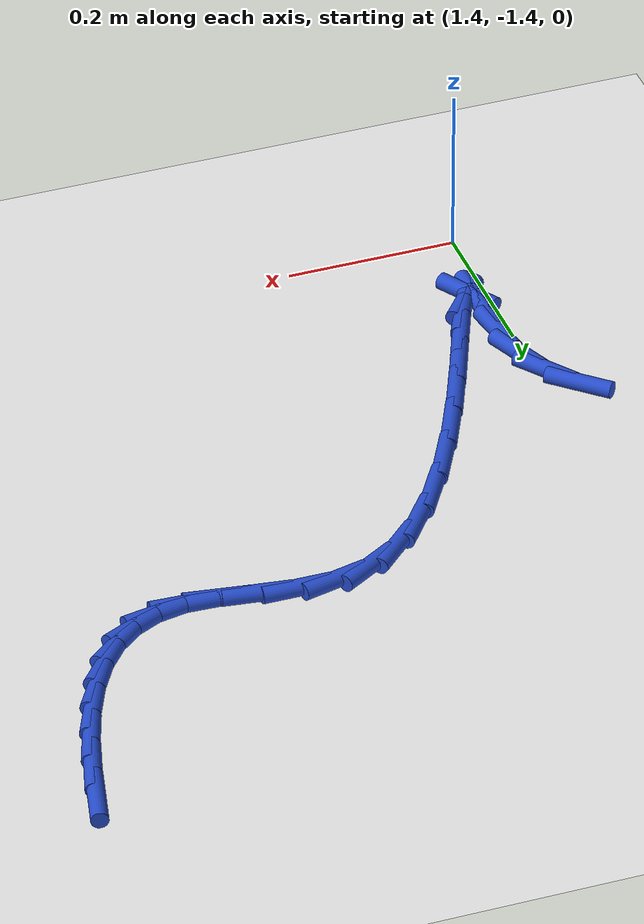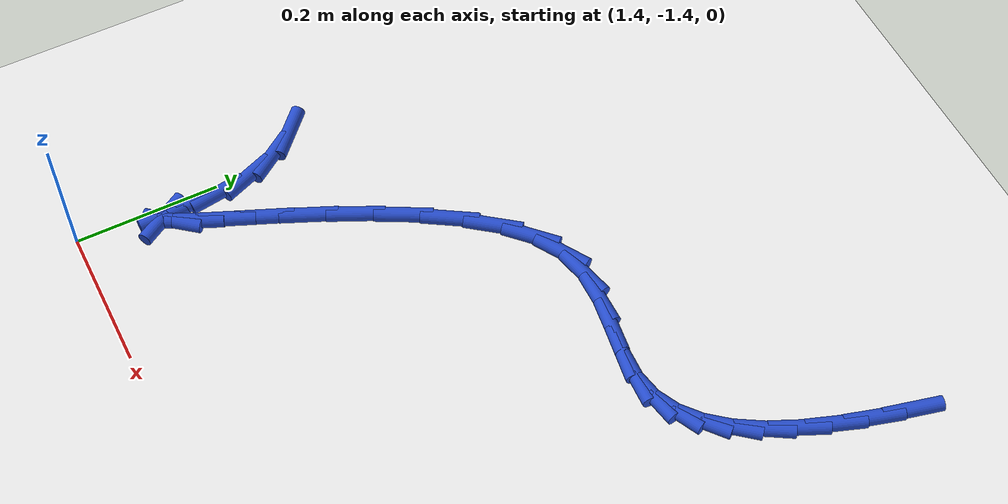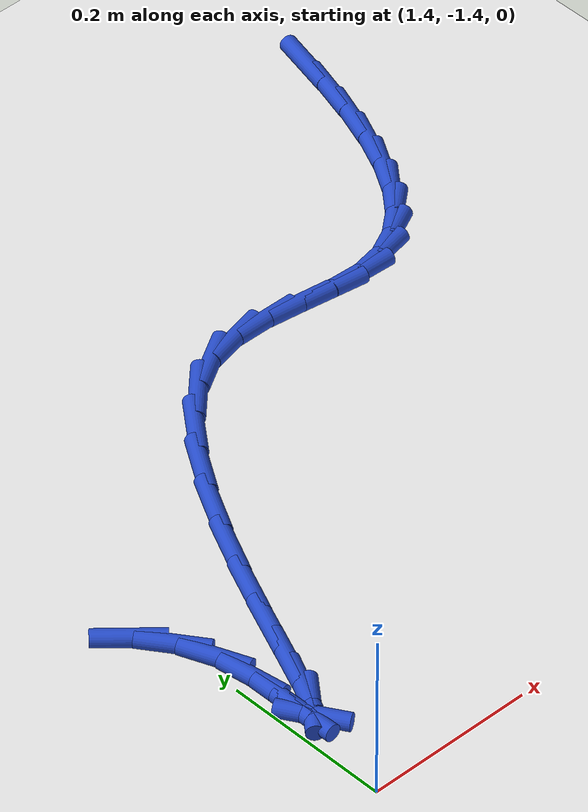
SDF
<sdf version="1.6">
 <world name="default">
  <model name="ground_plane">
   <static>1</static>
   <link name="link">
    <collision name="collision">
     <geometry><plane><normal>0 0 1</normal><size>100 100</size></plane></geometry>
     <surface><friction><ode><mu>100</mu><mu2>50</mu2></ode></friction></surface>
    </collision>
    <visual name="visual">
     <cast_shadows>0</cast_shadows>
     <geometry><plane><normal>0 0 1</normal><size>100 100</size></plane></geometry>
     <material>
      <script><uri>file://media/materials/scripts/gazebo.material</uri><name>Gazebo/WhiteGlow</name></script>
     </material>
    </visual>
   </link>
  </model>
  <model name="line">
   <link name="link_113">
    <pose>2.115907415192563 -0.5466432685578555 0.01 0 1.57 1.3313674205590829</pose>
    <collision name="collision">
     <geometry><cylinder><radius>0.01</radius><length>0.08</length></cylinder></geometry>
    </collision>
    <visual name="visual">
     <material>
      <script><name>Gazebo/Blue</name><uri>file://media/materials/scripts/gazebo.material</uri></script>
     </material>
     <geometry><cylinder><radius>0.01</radius><length>0.08</length></cylinder></geometry>
    </visual>
   </link>
   <link name="link_114">
    <pose>2.1037444398476213 -0.5964687610233148 0.01 0 1.57 1.2870497644595238</pose>
    <collision name="collision">
     <geometry><cylinder><radius>0.01</radius><length>0.08</length></cylinder></geometry>
    </collision>
    <visual name="visual">
     <material>
      <script><name>Gazebo/Blue</name><uri>file://media/materials/scripts/gazebo.material</uri></script>
     </material>
     <geometry><cylinder><radius>0.01</radius><length>0.08</length></cylinder></geometry>
    </visual>
   </link>
   <link name="link_115">
    <pose>2.089951220682438 -0.6437681646326198 0.01 0 1.57 1.2265740792412025</pose>
    <collision name="collision">
     <geometry><cylinder><radius>0.01</radius><length>0.08</length></cylinder></geometry>
    </collision>
    <visual name="visual">
     <material>
      <script><name>Gazebo/Blue</name><uri>file://media/materials/scripts/gazebo.material</uri></script>
     </material>
     <geometry><cylinder><radius>0.01</radius><length>0.08</length></cylinder></geometry>
    </visual>
   </link>
   <link name="link_116">
    <pose>2.0741936314182823 -0.6877230519868835 0.01 0 1.57 1.1448180414535543</pose>
    <collision name="collision">
     <geometry><cylinder><radius>0.01</radius><length>0.08</length></cylinder></geometry>
    </collision>
    <visual name="visual">
     <material>
      <script><name>Gazebo/Blue</name><uri>file://media/materials/scripts/gazebo.material</uri></script>
     </material>
     <geometry><cylinder><radius>0.01</radius><length>0.08</length></cylinder></geometry>
    </visual>
   </link>
   <link name="link_117">
    <pose>2.0561375457764206 -0.7275149956872194 0.01 0 1.57 1.0345618803807963</pose>
    <collision name="collision">
     <geometry><cylinder><radius>0.01</radius><length>0.08</length></cylinder></geometry>
    </collision>
    <visual name="visual">
     <material>
      <script><name>Gazebo/Blue</name><uri>file://media/materials/scripts/gazebo.material</uri></script>
     </material>
     <geometry><cylinder><radius>0.01</radius><length>0.08</length></cylinder></geometry>
    </visual>
   </link>
   <link name="link_118">
    <pose>2.0354488374781234 -0.7623255683347402 0.01 0 1.57 0.8867339361501745</pose>
    <collision name="collision">
     <geometry><cylinder><radius>0.01</radius><length>0.08</length></cylinder></geometry>
    </collision>
    <visual name="visual">
     <material>
      <script><name>Gazebo/Blue</name><uri>file://media/materials/scripts/gazebo.material</uri></script>
     </material>
     <geometry><cylinder><radius>0.01</radius><length>0.08</length></cylinder></geometry>
    </visual>
   </link>
   <link name="link_119">
    <pose>2.011793380244658 -0.7913363425305604 0.01 0 1.57 0.693180473224993</pose>
    <collision name="collision">
     <geometry><cylinder><radius>0.01</radius><length>0.08</length></cylinder></geometry>
    </collision>
    <visual name="visual">
     <material>
      <script><name>Gazebo/Blue</name><uri>file://media/materials/scripts/gazebo.material</uri></script>
     </material>
     <geometry><cylinder><radius>0.01</radius><length>0.08</length></cylinder></geometry>
    </visual>
   </link>
   <link name="link_120">
    <pose>1.9848370477972916 -0.8137288908757925 0.01 0 1.57 0.4547227530638178</pose>
    <collision name="collision">
     <geometry><cylinder><radius>0.01</radius><length>0.08</length></cylinder></geometry>
    </collision>
    <visual name="visual">
     <material>
      <script><name>Gazebo/Blue</name><uri>file://media/materials/scripts/gazebo.material</uri></script>
     </material>
     <geometry><cylinder><radius>0.01</radius><length>0.08</length></cylinder></geometry>
    </visual>
   </link>
   <link name="link_121">
    <pose>1.9542457138572944 -0.8286847859715502 0.01 0 1.57 0.19151055205031883</pose>
    <collision name="collision">
     <geometry><cylinder><radius>0.01</radius><length>0.08</length></cylinder></geometry>
    </collision>
    <visual name="visual">
     <material>
      <script><name>Gazebo/Blue</name><uri>file://media/materials/scripts/gazebo.material</uri></script>
     </material>
     <geometry><cylinder><radius>0.01</radius><length>0.08</length></cylinder></geometry>
    </visual>
   </link>
   <link name="link_122">
    <pose>1.9196852521459342 -0.8353856004189467 0.01 0 1.57 -0.04310970163644118</pose>
    <collision name="collision">
     <geometry><cylinder><radius>0.01</radius><length>0.08</length></cylinder></geometry>
    </collision>
    <visual name="visual">
     <material>
      <script><name>Gazebo/Blue</name><uri>file://media/materials/scripts/gazebo.material</uri></script>
     </material>
     <geometry><cylinder><radius>0.01</radius><length>0.08</length></cylinder></geometry>
    </visual>
   </link>
   <link name="link_123">
    <pose>1.8810243095182368 -0.8337179054820587 0.01 0 1.57 -0.14919367216103063</pose>
    <collision name="collision">
     <geometry><cylinder><radius>0.01</radius><length>0.08</length></cylinder></geometry>
    </collision>
    <visual name="visual">
     <material>
      <script><name>Gazebo/Blue</name><uri>file://media/materials/scripts/gazebo.material</uri></script>
     </material>
     <geometry><cylinder><radius>0.01</radius><length>0.08</length></cylinder></geometry>
    </visual>
   </link>
   <link name="link_124">
    <pose>1.8392445414862082 -0.8274379646297139 0.01 0 1.57 -0.13278140212475242</pose>
    <collision name="collision">
     <geometry><cylinder><radius>0.01</radius><length>0.08</length></cylinder></geometry>
    </collision>
    <visual name="visual">
     <material>
      <script><name>Gazebo/Blue</name><uri>file://media/materials/scripts/gazebo.material</uri></script>
     </material>
     <geometry><cylinder><radius>0.01</radius><length>0.08</length></cylinder></geometry>
    </visual>
   </link>
   <link name="link_125">
    <pose>1.7957074940110038 -0.8216228388829616 0.01 0 1.57 -0.006193926942479636</pose>
    <collision name="collision">
     <geometry><cylinder><radius>0.01</radius><length>0.08</length></cylinder></geometry>
    </collision>
    <visual name="visual">
     <material>
      <script><name>Gazebo/Blue</name><uri>file://media/materials/scripts/gazebo.material</uri></script>
     </material>
     <geometry><cylinder><radius>0.01</radius><length>0.08</length></cylinder></geometry>
    </visual>
   </link>
   <link name="link_126">
    <pose>1.751775038561572 -0.8213507209835852 0.01 0 1.57 0.236364448252622</pose>
    <collision name="collision">
     <geometry><cylinder><radius>0.01</radius><length>0.08</length></cylinder></geometry>
    </collision>
    <visual name="visual">
     <material>
      <script><name>Gazebo/Blue</name><uri>file://media/materials/scripts/gazebo.material</uri></script>
     </material>
     <geometry><cylinder><radius>0.01</radius><length>0.08</length></cylinder></geometry>
    </visual>
   </link>
   <link name="link_127">
    <pose>1.7088090466068646 -0.831699803673368 0.01 0 1.57 0.5444086317319743</pose>
    <collision name="collision">
     <geometry><cylinder><radius>0.01</radius><length>0.08</length></cylinder></geometry>
    </collision>
    <visual name="visual">
     <material>
      <script><name>Gazebo/Blue</name><uri>file://media/materials/scripts/gazebo.material</uri></script>
     </material>
     <geometry><cylinder><radius>0.01</radius><length>0.08</length></cylinder></geometry>
    </visual>
   </link>
   <link name="link_128">
    <pose>1.6679765970197287 -0.8564213310664432 0.01 0 1.57 0.7728100630754868</pose>
    <collision name="collision">
     <geometry><cylinder><radius>0.01</radius><length>0.08</length></cylinder></geometry>
    </collision>
    <visual name="visual">
     <material>
      <script><name>Gazebo/Blue</name><uri>file://media/materials/scripts/gazebo.material</uri></script>
     </material>
     <geometry><cylinder><radius>0.01</radius><length>0.08</length></cylinder></geometry>
    </visual>
   </link>
   <link name="link_129">
    <pose>1.6296426110278293 -0.893802161013129 0.01 0 1.57 0.9206908321034267</pose>
    <collision name="collision">
     <geometry><cylinder><radius>0.01</radius><length>0.08</length></cylinder></geometry>
    </collision>
    <visual name="visual">
     <material>
      <script><name>Gazebo/Blue</name><uri>file://media/materials/scripts/gazebo.material</uri></script>
     </material>
     <geometry><cylinder><radius>0.01</radius><length>0.08</length></cylinder></geometry>
    </visual>
   </link>
   <link name="link_130">
    <pose>1.5939655550992888 -0.9407227587937553 0.01 0 1.57 1.0186447162879002</pose>
    <collision name="collision">
     <geometry><cylinder><radius>0.01</radius><length>0.08</length></cylinder></geometry>
    </collision>
    <visual name="visual">
     <material>
      <script><name>Gazebo/Blue</name><uri>file://media/materials/scripts/gazebo.material</uri></script>
     </material>
     <geometry><cylinder><radius>0.01</radius><length>0.08</length></cylinder></geometry>
    </visual>
   </link>
   <link name="link_131">
    <pose>1.5611038955196712 -0.9940635884450401 0.01 0 1.57 1.085261804968072</pose>
    <collision name="collision">
     <geometry><cylinder><radius>0.01</radius><length>0.08</length></cylinder></geometry>
    </collision>
    <visual name="visual">
     <material>
      <script><name>Gazebo/Blue</name><uri>file://media/materials/scripts/gazebo.material</uri></script>
     </material>
     <geometry><cylinder><radius>0.01</radius><length>0.08</length></cylinder></geometry>
    </visual>
   </link>
   <link name="link_132">
    <pose>1.5312160985745407 -1.0507051140037003 0.01 0 1.57 1.1307321627197833</pose>
    <collision name="collision">
     <geometry><cylinder><radius>0.01</radius><length>0.08</length></cylinder></geometry>
    </collision>
    <visual name="visual">
     <material>
      <script><name>Gazebo/Blue</name><uri>file://media/materials/scripts/gazebo.material</uri></script>
     </material>
     <geometry><cylinder><radius>0.01</radius><length>0.08</length></cylinder></geometry>
    </visual>
   </link>
   <link name="link_133">
    <pose>1.5044606305494594 -1.107527799506456 0.01 0 1.57 1.1600961314177825</pose>
    <collision name="collision">
     <geometry><cylinder><radius>0.01</radius><length>0.08</length></cylinder></geometry>
    </collision>
    <visual name="visual">
     <material>
      <script><name>Gazebo/Blue</name><uri>file://media/materials/scripts/gazebo.material</uri></script>
     </material>
     <geometry><cylinder><radius>0.01</radius><length>0.08</length></cylinder></geometry>
    </visual>
   </link>
   <link name="link_134">
    <pose>1.4809959577299918 -1.161412108990025 0.01 0 1.57 1.1744429560243728</pose>
    <collision name="collision">
     <geometry><cylinder><radius>0.01</radius><length>0.08</length></cylinder></geometry>
    </collision>
    <visual name="visual">
     <material>
      <script><name>Gazebo/Blue</name><uri>file://media/materials/scripts/gazebo.material</uri></script>
     </material>
     <geometry><cylinder><radius>0.01</radius><length>0.08</length></cylinder></geometry>
    </visual>
   </link>
   <link name="link_135">
    <pose>1.4609805464017005 -1.2092385064911246 0.01 0 1.57 1.169322854469548</pose>
    <collision name="collision">
     <geometry><cylinder><radius>0.01</radius><length>0.08</length></cylinder></geometry>
    </collision>
    <visual name="visual">
     <material>
      <script><name>Gazebo/Blue</name><uri>file://media/materials/scripts/gazebo.material</uri></script>
     </material>
     <geometry><cylinder><radius>0.01</radius><length>0.08</length></cylinder></geometry>
    </visual>
   </link>
   <link name="link_136">
    <pose>1.44457286285015 -1.2478874560464732 0.01 0 1.57 1.1235062729303205</pose>
    <collision name="collision">
     <geometry><cylinder><radius>0.01</radius><length>0.08</length></cylinder></geometry>
    </collision>
    <visual name="visual">
     <material>
      <script><name>Gazebo/Blue</name><uri>file://media/materials/scripts/gazebo.material</uri></script>
     </material>
     <geometry><cylinder><radius>0.01</radius><length>0.08</length></cylinder></geometry>
    </visual>
   </link>
   <link name="link_137">
    <pose>1.4319313733609036 -1.2742394216927884 0.01 0 1.57 0.8978158181689013</pose>
    <collision name="collision">
     <geometry><cylinder><radius>0.01</radius><length>0.08</length></cylinder></geometry>
    </collision>
    <visual name="visual">
     <material>
      <script><name>Gazebo/Blue</name><uri>file://media/materials/scripts/gazebo.material</uri></script>
     </material>
     <geometry><cylinder><radius>0.01</radius><length>0.08</length></cylinder></geometry>
    </visual>
   </link>
   <link name="link_138">
    <pose>1.4232145442195248 -1.285174867466789 0.01 0 1.57 -1.0233123393956602</pose>
    <collision name="collision">
     <geometry><cylinder><radius>0.01</radius><length>0.08</length></cylinder></geometry>
    </collision>
    <visual name="visual">
     <material>
      <script><name>Gazebo/Blue</name><uri>file://media/materials/scripts/gazebo.material</uri></script>
     </material>
     <geometry><cylinder><radius>0.01</radius><length>0.08</length></cylinder></geometry>
    </visual>
   </link>
   <link name="link_139">
    <pose>1.4185808417115773 -1.2775742574051931 0.01 0 1.57 -1.548713593887668</pose>
    <collision name="collision">
     <geometry><cylinder><radius>0.01</radius><length>0.08</length></cylinder></geometry>
    </collision>
    <visual name="visual">
     <material>
      <script><name>Gazebo/Blue</name><uri>file://media/materials/scripts/gazebo.material</uri></script>
     </material>
     <geometry><cylinder><radius>0.01</radius><length>0.08</length></cylinder></geometry>
    </visual>
   </link>
   <link name="link_140">
    <pose>1.4179466185320793 -1.2488586049337738 0.01 0 1.57 -1.5603982046405083</pose>
    <collision name="collision">
     <geometry><cylinder><radius>0.01</radius><length>0.08</length></cylinder></geometry>
    </collision>
    <visual name="visual">
     <material>
      <script><name>Gazebo/Blue</name><uri>file://media/materials/scripts/gazebo.material</uri></script>
     </material>
     <geometry><cylinder><radius>0.01</radius><length>0.08</length></cylinder></geometry>
    </visual>
   </link>
   <link name="link_141">
    <pose>1.4174884589613392 -1.204798432183014 0.01 0 1.57 -1.4235283012545294</pose>
    <collision name="collision">
     <geometry><cylinder><radius>0.01</radius><length>0.08</length></cylinder></geometry>
    </collision>
    <visual name="visual">
     <material>
      <script><name>Gazebo/Blue</name><uri>file://media/materials/scripts/gazebo.material</uri></script>
     </material>
     <geometry><cylinder><radius>0.01</radius><length>0.08</length></cylinder></geometry>
    </visual>
   </link>
   <link name="link_142">
    <pose>1.410494571421642 -1.1576513789465857 0.01 0 1.57 -1.1846834994069022</pose>
    <collision name="collision">
     <geometry><cylinder><radius>0.01</radius><length>0.08</length></cylinder></geometry>
    </collision>
    <visual name="visual">
     <material>
      <script><name>Gazebo/Blue</name><uri>file://media/materials/scripts/gazebo.material</uri></script>
     </material>
     <geometry><cylinder><radius>0.01</radius><length>0.08</length></cylinder></geometry>
    </visual>
   </link>
   <link name="link_143">
    <pose>1.3932619229884984 -1.1152605344918065 0.01 0 1.57 -0.9499797964137419</pose>
    <collision name="collision">
     <geometry><cylinder><radius>0.01</radius><length>0.08</length></cylinder></geometry>
    </collision>
    <visual name="visual">
     <material>
      <script><name>Gazebo/Blue</name><uri>file://media/materials/scripts/gazebo.material</uri></script>
     </material>
     <geometry><cylinder><radius>0.01</radius><length>0.08</length></cylinder></geometry>
    </visual>
   </link>
   <link name="link_144">
    <pose>1.366870652971435 -1.0783570177998762 0.01 0 1.57 -0.7431559715083769</pose>
    <collision name="collision">
     <geometry><cylinder><radius>0.01</radius><length>0.08</length></cylinder></geometry>
    </collision>
    <visual name="visual">
     <material>
      <script><name>Gazebo/Blue</name><uri>file://media/materials/scripts/gazebo.material</uri></script>
     </material>
     <geometry><cylinder><radius>0.01</radius><length>0.08</length></cylinder></geometry>
    </visual>
   </link>
  </model>
 </world>
</sdf>
